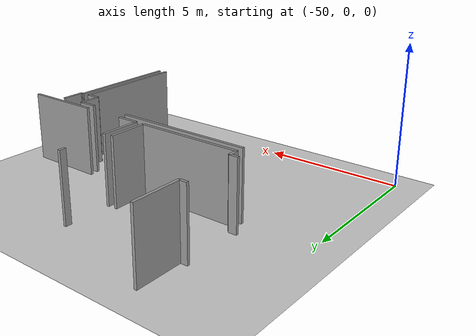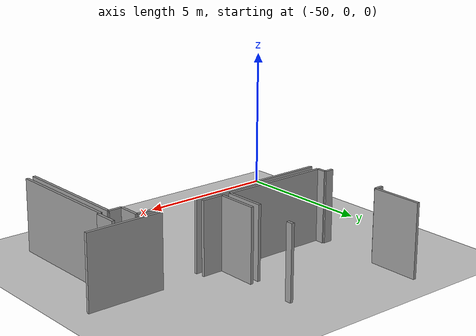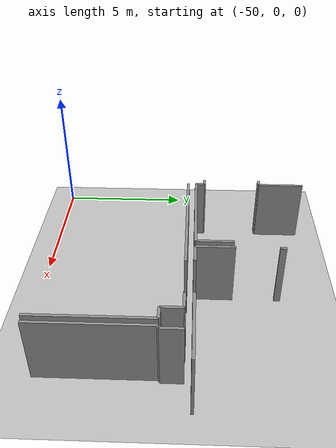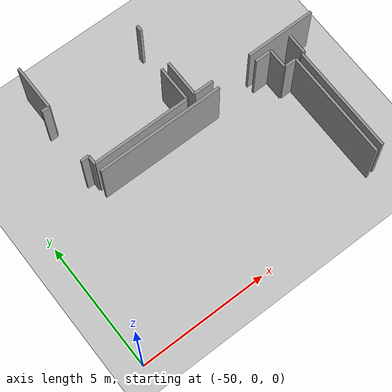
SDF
<sdf version="1.6">
 <world name="default">
  <model name="ground_plane">
   <static>1</static>
   <link name="link">
    <collision name="collision">
     <geometry><plane><normal>0 0 1</normal><size>100 100</size></plane></geometry>
     <surface><friction><ode><mu>100</mu><mu2>50</mu2></ode></friction></surface>
    </collision>
    <visual name="visual">
     <cast_shadows>0</cast_shadows>
     <geometry><plane><normal>0 0 1</normal><size>100 100</size></plane></geometry>
     <material>
      <script><uri>file://media/materials/scripts/gazebo.material</uri><name>Gazebo/Grey</name></script>
     </material>
    </visual>
   </link>
  </model>
  <model name="0510032270_A_40_1_104">
   <static>1</static>
   <link name="Wall_8">
    <collision name="Wall_8_Collision">
     <geometry><box><size>0.342325628677 0.1 2.5</size></box></geometry>
     <pose>0.171162814339 0 1.25 0 0 0</pose>
    </collision>
    <visual name="Wall_8_Visual">
     <pose>0.171162814339 0 1.25 0 0 0</pose>
     <geometry><box><size>0.342325628677 0.1 2.5</size></box></geometry>
     <material>
      <script><uri>file://media/materials/scripts/gazebo.material</uri><name>Gazebo/Grey</name></script>
      <ambient>1 1 1 1</ambient>
     </material>
    </visual>
    <pose>0.311066495546 -9.39591089876 0 0 0 1.57079632679</pose>
   </link>
   <link name="Wall_9">
    <collision name="Wall_9_Collision">
     <geometry><box><size>0.311066495546 0.1 2.5</size></box></geometry>
     <pose>0.155533247773 0 1.25 0 0 0</pose>
    </collision>
    <visual name="Wall_9_Visual">
     <pose>0.155533247773 0 1.25 0 0 0</pose>
     <geometry><box><size>0.311066495546 0.1 2.5</size></box></geometry>
     <material>
      <script><uri>file://media/materials/scripts/gazebo.material</uri><name>Gazebo/Grey</name></script>
      <ambient>1 1 1 1</ambient>
     </material>
    </visual>
    <pose>0.311066495546 -9.05358527009 0 0 0 3.14159265359</pose>
   </link>
   <link name="Wall_10">
    <collision name="Wall_10_Collision">
     <geometry><box><size>0.292260187809 0.1 2.5</size></box></geometry>
     <pose>0.146130093904 0 1.25 0 0 0</pose>
    </collision>
    <visual name="Wall_10_Visual">
     <pose>0.146130093904 0 1.25 0 0 0</pose>
     <geometry><box><size>0.292260187809 0.1 2.5</size></box></geometry>
     <material>
      <script><uri>file://media/materials/scripts/gazebo.material</uri><name>Gazebo/Grey</name></script>
      <ambient>1 1 1 1</ambient>
     </material>
    </visual>
    <pose>0.0 -6.83304319097 0 0 0 0.0</pose>
   </link>
   <link name="Wall_11">
    <collision name="Wall_11_Collision">
     <geometry><box><size>1.76448911648 0.1 2.5</size></box></geometry>
     <pose>0.882244558242 0 1.25 0 0 0</pose>
    </collision>
    <visual name="Wall_11_Visual">
     <pose>0.882244558242 0 1.25 0 0 0</pose>
     <geometry><box><size>1.76448911648 0.1 2.5</size></box></geometry>
     <material>
      <script><uri>file://media/materials/scripts/gazebo.material</uri><name>Gazebo/Grey</name></script>
      <ambient>1 1 1 1</ambient>
     </material>
    </visual>
    <pose>0.292260187809 -6.83304319097 0 0 0 1.57079632679</pose>
   </link>
   <link name="Wall_14">
    <collision name="Wall_14_Collision">
     <geometry><box><size>1.38455087233 0.1 2.5</size></box></geometry>
     <pose>0.692275436167 0 1.25 0 0 0</pose>
    </collision>
    <visual name="Wall_14_Visual">
     <pose>0.692275436167 0 1.25 0 0 0</pose>
     <geometry><box><size>1.38455087233 0.1 2.5</size></box></geometry>
     <material>
      <script><uri>file://media/materials/scripts/gazebo.material</uri><name>Gazebo/Grey</name></script>
      <ambient>1 1 1 1</ambient>
     </material>
    </visual>
    <pose>4.08325603263 -8.00945398173 0 0 0 -1.57079632679</pose>
   </link>
   <link name="Wall_15">
    <collision name="Wall_15_Collision">
     <geometry><box><size>3.77219001864 0.1 2.5</size></box></geometry>
     <pose>1.88609500932 0 1.25 0 0 0</pose>
    </collision>
    <visual name="Wall_15_Visual">
     <pose>1.88609500932 0 1.25 0 0 0</pose>
     <geometry><box><size>3.77219001864 0.1 2.5</size></box></geometry>
     <material>
      <script><uri>file://media/materials/scripts/gazebo.material</uri><name>Gazebo/Grey</name></script>
      <ambient>1 1 1 1</ambient>
     </material>
    </visual>
    <pose>4.08325603263 -9.39400485406 0 0 0 -3.14108736494</pose>
   </link>
   <link name="Wall_33">
    <collision name="Wall_33_Collision">
     <geometry><box><size>2.69895929959 0.1 2.5</size></box></geometry>
     <pose>1.3494796498 0 1.25 0 0 0</pose>
    </collision>
    <visual name="Wall_33_Visual">
     <pose>1.3494796498 0 1.25 0 0 0</pose>
     <geometry><box><size>2.69895929959 0.1 2.5</size></box></geometry>
     <material>
      <script><uri>file://media/materials/scripts/gazebo.material</uri><name>Gazebo/Grey</name></script>
      <ambient>1 1 1 1</ambient>
     </material>
    </visual>
    <pose>9.42755124084 -9.40493284369 0 0 0 3.14159265359</pose>
   </link>
   <link name="Wall_34">
    <collision name="Wall_34_Collision">
     <geometry><box><size>0.762163741947 0.1 2.5</size></box></geometry>
     <pose>0.381081870973 0 1.25 0 0 0</pose>
    </collision>
    <visual name="Wall_34_Visual">
     <pose>0.381081870973 0 1.25 0 0 0</pose>
     <geometry><box><size>0.762163741947 0.1 2.5</size></box></geometry>
     <material>
      <script><uri>file://media/materials/scripts/gazebo.material</uri><name>Gazebo/Grey</name></script>
      <ambient>1 1 1 1</ambient>
     </material>
    </visual>
    <pose>5.16220440423 -9.40493284369 0 0 0 3.14159265359</pose>
   </link>
   <link name="Wall_35">
    <collision name="Wall_35_Collision">
     <geometry><box><size>1.42724627368 0.1 2.5</size></box></geometry>
     <pose>0.713623136841 0 1.25 0 0 0</pose>
    </collision>
    <visual name="Wall_35_Visual">
     <pose>0.713623136841 0 1.25 0 0 0</pose>
     <geometry><box><size>1.42724627368 0.1 2.5</size></box></geometry>
     <material>
      <script><uri>file://media/materials/scripts/gazebo.material</uri><name>Gazebo/Grey</name></script>
      <ambient>1 1 1 1</ambient>
     </material>
    </visual>
    <pose>4.40004066229 -9.40493284369 0 0 0 1.57079632679</pose>
   </link>
   <link name="Wall_36">
    <collision name="Wall_36_Collision">
     <geometry><box><size>0.234074740931 0.1 2.5</size></box></geometry>
     <pose>0.117037370466 0 1.25 0 0 0</pose>
    </collision>
    <visual name="Wall_36_Visual">
     <pose>0.117037370466 0 1.25 0 0 0</pose>
     <geometry><box><size>0.234074740931 0.1 2.5</size></box></geometry>
     <material>
      <script><uri>file://media/materials/scripts/gazebo.material</uri><name>Gazebo/Grey</name></script>
      <ambient>1 1 1 1</ambient>
     </material>
    </visual>
    <pose>4.40004066229 -6.43455277838 0 0 0 1.56048181746</pose>
   </link>
   <link name="Wall_60">
    <collision name="Wall_60_Collision">
     <geometry><box><size>4.89002122063 0.1 2.5</size></box></geometry>
     <pose>2.44501061032 0 1.25 0 0 0</pose>
    </collision>
    <visual name="Wall_60_Visual">
     <pose>2.44501061032 0 1.25 0 0 0</pose>
     <geometry><box><size>4.89002122063 0.1 2.5</size></box></geometry>
     <material>
      <script><uri>file://media/materials/scripts/gazebo.material</uri><name>Gazebo/Grey</name></script>
      <ambient>1 1 1 1</ambient>
     </material>
    </visual>
    <pose>0.304713013203 -9.71676175712 0 0 0 0.0</pose>
   </link>
   <link name="Wall_61">
    <collision name="Wall_61_Collision">
     <geometry><box><size>0.653773333164 0.1 2.5</size></box></geometry>
     <pose>0.326886666582 0 1.25 0 0 0</pose>
    </collision>
    <visual name="Wall_61_Visual">
     <pose>0.326886666582 0 1.25 0 0 0</pose>
     <geometry><box><size>0.653773333164 0.1 2.5</size></box></geometry>
     <material>
      <script><uri>file://media/materials/scripts/gazebo.material</uri><name>Gazebo/Grey</name></script>
      <ambient>1 1 1 1</ambient>
     </material>
    </visual>
    <pose>6.75908865649 -9.71676175712 0 0 0 0.0</pose>
   </link>
   <link name="Wall_62">
    <collision name="Wall_62_Collision">
     <geometry><box><size>0.759495279363 0.1 2.5</size></box></geometry>
     <pose>0.379747639681 0 1.25 0 0 0</pose>
    </collision>
    <visual name="Wall_62_Visual">
     <pose>0.379747639681 0 1.25 0 0 0</pose>
     <geometry><box><size>0.759495279363 0.1 2.5</size></box></geometry>
     <material>
      <script><uri>file://media/materials/scripts/gazebo.material</uri><name>Gazebo/Grey</name></script>
      <ambient>1 1 1 1</ambient>
     </material>
    </visual>
    <pose>7.41286198966 -9.71676175712 0 0 0 -1.57079632679</pose>
   </link>
   <link name="Wall_63">
    <collision name="Wall_63_Collision">
     <geometry><box><size>0.477908941891 0.1 2.5</size></box></geometry>
     <pose>0.238954470946 0 1.25 0 0 0</pose>
    </collision>
    <visual name="Wall_63_Visual">
     <pose>0.238954470946 0 1.25 0 0 0</pose>
     <geometry><box><size>0.477908941891 0.1 2.5</size></box></geometry>
     <material>
      <script><uri>file://media/materials/scripts/gazebo.material</uri><name>Gazebo/Grey</name></script>
      <ambient>1 1 1 1</ambient>
     </material>
    </visual>
    <pose>7.41286198966 -10.4762570365 0 0 0 0.0</pose>
   </link>
   <link name="Wall_64">
    <collision name="Wall_64_Collision">
     <geometry><box><size>4.18783435201 0.1 2.5</size></box></geometry>
     <pose>2.093917176 0 1.25 0 0 0</pose>
    </collision>
    <visual name="Wall_64_Visual">
     <pose>2.093917176 0 1.25 0 0 0</pose>
     <geometry><box><size>4.18783435201 0.1 2.5</size></box></geometry>
     <material>
      <script><uri>file://media/materials/scripts/gazebo.material</uri><name>Gazebo/Grey</name></script>
      <ambient>1 1 1 1</ambient>
     </material>
    </visual>
    <pose>7.89077093155 -10.4762570365 0 0 0 -1.57079632679</pose>
   </link>
   <link name="Wall_573">
    <collision name="Wall_573_Collision">
     <geometry><box><size>0.782494885447 0.1 2.5</size></box></geometry>
     <pose>0.391247442723 0 1.25 0 0 0</pose>
    </collision>
    <visual name="Wall_573_Visual">
     <pose>0.391247442723 0 1.25 0 0 0</pose>
     <geometry><box><size>0.782494885447 0.1 2.5</size></box></geometry>
     <material>
      <script><uri>file://media/materials/scripts/gazebo.material</uri><name>Gazebo/Grey</name></script>
      <ambient>1 1 1 1</ambient>
     </material>
    </visual>
    <pose>8.27642730981 -9.67254152001 0 0 0 -1.57079632679</pose>
   </link>
   <link name="Wall_574">
    <collision name="Wall_574_Collision">
     <geometry><box><size>0.0983519066801 0.1 2.5</size></box></geometry>
     <pose>0.04917595334 0 1.25 0 0 0</pose>
    </collision>
    <visual name="Wall_574_Visual">
     <pose>0.04917595334 0 1.25 0 0 0</pose>
     <geometry><box><size>0.0983519066801 0.1 2.5</size></box></geometry>
     <material>
      <script><uri>file://media/materials/scripts/gazebo.material</uri><name>Gazebo/Grey</name></script>
      <ambient>1 1 1 1</ambient>
     </material>
    </visual>
    <pose>8.27642730981 -10.4550364055 0 0 0 3.14159265359</pose>
   </link>
   <link name="Wall_575">
    <collision name="Wall_575_Collision">
     <geometry><box><size>4.16064144758 0.1 2.5</size></box></geometry>
     <pose>2.08032072379 0 1.25 0 0 0</pose>
    </collision>
    <visual name="Wall_575_Visual">
     <pose>2.08032072379 0 1.25 0 0 0</pose>
     <geometry><box><size>4.16064144758 0.1 2.5</size></box></geometry>
     <material>
      <script><uri>file://media/materials/scripts/gazebo.material</uri><name>Gazebo/Grey</name></script>
      <ambient>1 1 1 1</ambient>
     </material>
    </visual>
    <pose>8.17807540313 -10.4550364055 0 0 0 -1.57079632679</pose>
   </link>
   <pose>-47.8 15.2142705567 0 0 0 0</pose>
  </model>
 </world>
</sdf>
